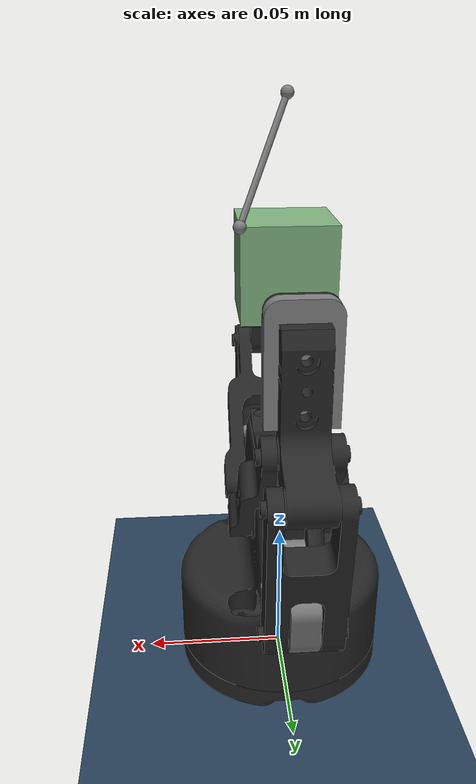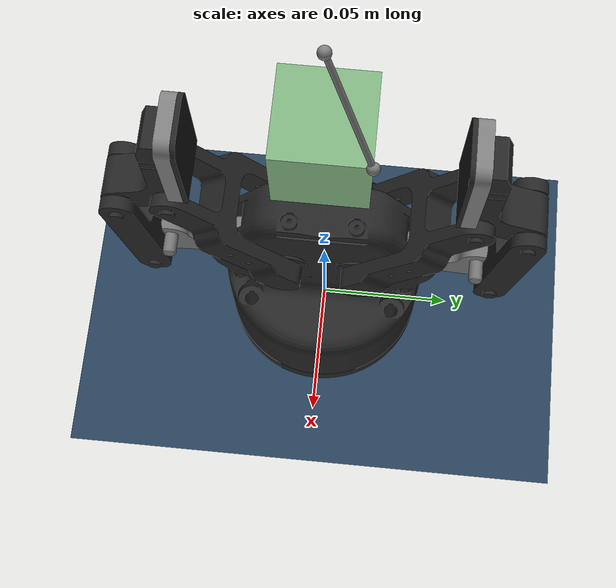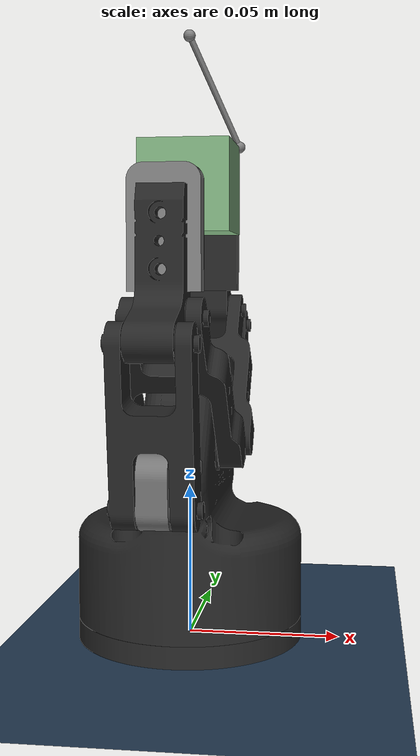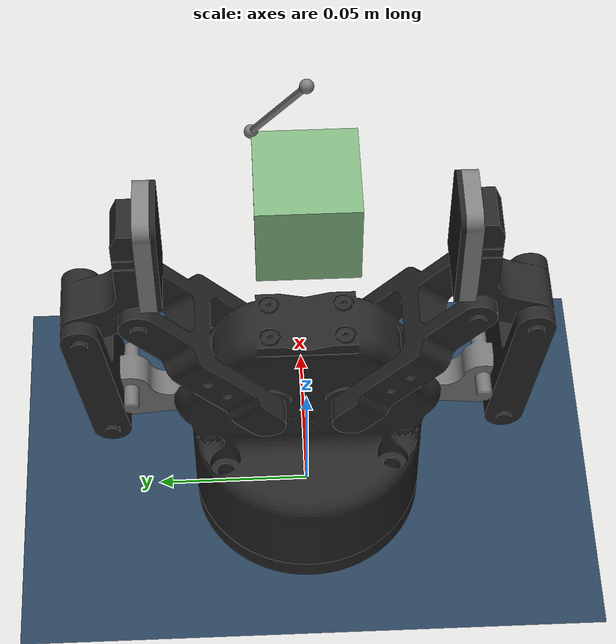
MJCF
<mujoco model="2f85 scene">

  <!-- Add some fluid viscosity to prevent the hanging box from jiggling forever -->
  <option viscosity="0.1"/>

  <include file="2f85.xml"/>

  <statistic center="0 0 0.05" extent="0.3"/>

  <visual>
    <headlight diffuse="0.6 0.6 0.6" ambient="0.3 0.3 0.3" specular="0 0 0"/>
    <rgba haze="0.15 0.25 0.35 1"/>
    <global azimuth="60" elevation="-20"/>
  </visual>

  <asset>
    <texture type="skybox" builtin="gradient" rgb1="0.3 0.5 0.7" rgb2="0 0 0" width="512" height="3072"/>
    <texture type="2d" name="groundplane" builtin="checker" mark="edge" rgb1="0.2 0.3 0.4" rgb2="0.1 0.2 0.3"
      markrgb="0.8 0.8 0.8" width="300" height="300"/>
    <material name="groundplane" texture="groundplane" texuniform="true" texrepeat="5 5" reflectance="0.2"/>
  </asset>

  <worldbody>
    <light pos="0 0 1"/>
    <light pos="0 -0.2 1" dir="0 0.2 -0.8" directional="true"/>
    <geom name="floor" size="0 0 0.05" type="plane" material="groundplane"/>
    <site size="0.002" pos="0 0 0.2" name="anchor"/>
    <body name="object" pos="0 0 0.15">
      <freejoint/>
      <geom type="box" size="0.015 0.015 0.015" rgba=".5 .7 .5 1" friction=".5" priority="1"/>
      <site size="0.002" pos="0.015 0.015 0.015" name="hook"/>
    </body>
  </worldbody>

  <tendon>
    <spatial limited="true" range="0 0.02" width="0.001">
      <site site="hook"/>
      <site site="anchor"/>
    </spatial>
  </tendon>

</mujoco>

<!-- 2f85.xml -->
<mujoco model="robotiq_2f85">
  <compiler angle="radian" meshdir="assets" autolimits="true"/>

  <asset>
    <material name="metal" rgba="0.58 0.58 0.58 1"/>
    <material name="silicone" rgba="0.1882 0.1882 0.1882 1"/>
    <material name="gray" rgba="0.4627 0.4627 0.4627 1"/>
    <material name="black" rgba="0.149 0.149 0.149 1"/>

    <mesh class="2f85" file="base_mount.stl"/>
    <mesh class="2f85" file="base.stl"/>
    <mesh class="2f85" file="driver.stl"/>
    <mesh class="2f85" file="coupler.stl"/>
    <mesh class="2f85" file="follower.stl"/>
    <mesh class="2f85" file="pad.stl"/>
    <mesh class="2f85" file="silicone_pad.stl"/>
    <mesh class="2f85" file="spring_link.stl"/>
  </asset>

  <default>
    <default class="2f85">
      <mesh scale="0.001 0.001 0.001"/>
      <general biastype="affine"/>
      <site type="sphere" rgba="0.9 0.9 0.9 1" size="0.005" group="4"/>
      <joint axis="1 0 0"/>
      <default class="driver">
        <joint range="0 0.8" armature="0.005" damping="0.1" solimplimit="0.95 0.99 0.001" solreflimit="0.005 1"/>
      </default>
      <default class="follower">
        <joint range="-0.872664 0.872664" pos="0 -0.018 0.0065" solimplimit="0.95 0.99 0.001" solreflimit="0.005 1"/>
      </default>
      <default class="spring_link">
        <joint range="-0.29670597283 0.8" stiffness="0.05" springref="2.62" damping="0.00125"/>
      </default>
      <default class="coupler">
        <joint range="-1.57 0" solimplimit="0.95 0.99 0.001" solreflimit="0.005 1"/>
      </default>

      <default class="visual">
        <geom type="mesh" contype="0" conaffinity="0" group="2"/>
      </default>
      <default class="collision">
        <geom type="mesh" group="3"/>
        <default class="pad_box1">
          <geom mass="0" type="box" pos="0 -0.0026 0.028125" size="0.011 0.004 0.009375" friction="0.7"
            solimp="0.95 0.99 0.001" solref="0.004 1" priority="1" rgba="0.55 0.55 0.55 1"/>
        </default>
        <default class="pad_box2">
          <geom mass="0" type="box" pos="0 -0.0026 0.009375" size="0.011 0.004 0.009375" friction="0.6"
            solimp="0.95 0.99 0.001" solref="0.004 1" priority="1" rgba="0.45 0.45 0.45 1"/>
        </default>
      </default>
    </default>
  </default>

  <worldbody>
    <body name="base_mount" quat="1 0 0 1" childclass="2f85">
      <geom class="visual" mesh="base_mount" material="black"/>
      <geom class="collision" mesh="base_mount"/>
      <body name="base" pos="0 0 0.0038" quat="1 0 0 -1">
        <inertial mass="0.777441" pos="0 -2.70394e-05 0.0354675" quat="1 -0.00152849 0 0"
          diaginertia="0.000260285 0.000225381 0.000152708"/>
        <geom class="visual" mesh="base" material="black"/>
        <geom class="collision" mesh="base"/>
        <site name="pinch" pos="0 0 0.145"/>
        <!-- Right-hand side 4-bar linkage -->
        <body name="right_driver" pos="0 0.0306011 0.054904">
          <inertial mass="0.00899563" pos="2.96931e-12 0.0177547 0.00107314" quat="0.681301 0.732003 0 0"
            diaginertia="1.72352e-06 1.60906e-06 3.22006e-07"/>
          <joint name="right_driver_joint" class="driver"/>
          <geom class="visual" mesh="driver" material="gray"/>
          <geom class="collision" mesh="driver"/>
          <body name="right_coupler" pos="0 0.0315 -0.0041">
            <inertial mass="0.0140974" pos="0 0.00301209 0.0232175" quat="0.705636 -0.0455904 0.0455904 0.705636"
              diaginertia="4.16206e-06 3.52216e-06 8.88131e-07"/>
            <joint name="right_coupler_joint" class="coupler"/>
            <geom class="visual" mesh="coupler" material="black"/>
            <geom class="collision" mesh="coupler"/>
          </body>
        </body>
        <body name="right_spring_link" pos="0 0.0132 0.0609">
          <inertial mass="0.0221642" pos="-8.65005e-09 0.0181624 0.0212658" quat="0.663403 -0.244737 0.244737 0.663403"
            diaginertia="8.96853e-06 6.71733e-06 2.63931e-06"/>
          <joint name="right_spring_link_joint" class="spring_link"/>
          <geom class="visual" mesh="spring_link" material="black"/>
          <geom class="collision" mesh="spring_link"/>
          <body name="right_follower" pos="0 0.055 0.0375">
            <inertial mass="0.0125222" pos="0 -0.011046 0.0124786" quat="1 0.1664 0 0"
              diaginertia="2.67415e-06 2.4559e-06 6.02031e-07"/>
            <joint name="right_follower_joint" class="follower"/>
            <geom class="visual" mesh="follower" material="black"/>
            <geom class="collision" mesh="follower"/>
            <body name="right_pad" pos="0 -0.0189 0.01352">
              <geom class="pad_box1" name="right_pad1"/>
              <geom class="pad_box2" name="right_pad2"/>
              <inertial mass="0.0035" pos="0 -0.0025 0.0185" quat="0.707107 0 0 0.707107"
                diaginertia="4.73958e-07 3.64583e-07 1.23958e-07"/>
              <geom class="visual" mesh="pad"/>
              <body name="right_silicone_pad">
                <geom class="visual" mesh="silicone_pad" material="black"/>
              </body>
            </body>
          </body>
        </body>
        <!-- Left-hand side 4-bar linkage -->
        <body name="left_driver" pos="0 -0.0306011 0.054904" quat="0 0 0 1">
          <inertial mass="0.00899563" pos="0 0.0177547 0.00107314" quat="0.681301 0.732003 0 0"
            diaginertia="1.72352e-06 1.60906e-06 3.22006e-07"/>
          <joint name="left_driver_joint" class="driver"/>
          <geom class="visual" mesh="driver" material="gray"/>
          <geom class="collision" mesh="driver"/>
          <body name="left_coupler" pos="0 0.0315 -0.0041">
            <inertial mass="0.0140974" pos="0 0.00301209 0.0232175" quat="0.705636 -0.0455904 0.0455904 0.705636"
              diaginertia="4.16206e-06 3.52216e-06 8.88131e-07"/>
            <joint name="left_coupler_joint" class="coupler"/>
            <geom class="visual" mesh="coupler" material="black"/>
            <geom class="collision" mesh="coupler"/>
          </body>
        </body>
        <body name="left_spring_link" pos="0 -0.0132 0.0609" quat="0 0 0 1">
          <inertial mass="0.0221642" pos="-8.65005e-09 0.0181624 0.0212658" quat="0.663403 -0.244737 0.244737 0.663403"
            diaginertia="8.96853e-06 6.71733e-06 2.63931e-06"/>
          <joint name="left_spring_link_joint" class="spring_link"/>
          <geom class="visual" mesh="spring_link" material="black"/>
          <geom class="collision" mesh="spring_link"/>
          <body name="left_follower" pos="0 0.055 0.0375">
            <inertial mass="0.0125222" pos="0 -0.011046 0.0124786" quat="1 0.1664 0 0"
              diaginertia="2.67415e-06 2.4559e-06 6.02031e-07"/>
            <joint name="left_follower_joint" class="follower"/>
            <geom class="visual" mesh="follower" material="black"/>
            <geom class="collision" mesh="follower"/>
            <body name="left_pad" pos="0 -0.0189 0.01352">
              <geom class="pad_box1" name="left_pad1"/>
              <geom class="pad_box2" name="left_pad2"/>
              <inertial mass="0.0035" pos="0 -0.0025 0.0185" quat="1 0 0 1"
                diaginertia="4.73958e-07 3.64583e-07 1.23958e-07"/>
              <geom class="visual" mesh="pad"/>
              <body name="left_silicone_pad">
                <geom class="visual" mesh="silicone_pad" material="black"/>
              </body>
            </body>
          </body>
        </body>
      </body>
    </body>
  </worldbody>

  <contact>
    <exclude body1="base" body2="left_driver"/>
    <exclude body1="base" body2="right_driver"/>
    <exclude body1="base" body2="left_spring_link"/>
    <exclude body1="base" body2="right_spring_link"/>
    <exclude body1="right_coupler" body2="right_follower"/>
    <exclude body1="left_coupler" body2="left_follower"/>
  </contact>

  <tendon>
    <fixed name="split">
      <joint joint="right_driver_joint" coef="0.5"/>
      <joint joint="left_driver_joint" coef="0.5"/>
    </fixed>
  </tendon>

  <equality>
    <connect anchor="0 0 0" body1="right_follower" body2="right_coupler" solimp="0.95 0.99 0.001" solref="0.005 1"/>
    <connect anchor="0 0 0" body1="left_follower" body2="left_coupler" solimp="0.95 0.99 0.001" solref="0.005 1"/>
    <joint joint1="right_driver_joint" joint2="left_driver_joint" polycoef="0 1 0 0 0" solimp="0.95 0.99 0.001"
      solref="0.005 1"/>
  </equality>

  <actuator>
    <general class="2f85" name="fingers_actuator" tendon="split" forcerange="-5 5" ctrlrange="0 255"
      gainprm="0.3137255 0 0" biasprm="0 -100 -10"/>
  </actuator>

  <sensor>
    <framepos name="pinch_pos" objtype="site" objname="pinch"/>
    <framequat name="pinch_quat" objtype="site" objname="pinch"/>
  </sensor>
</mujoco>
